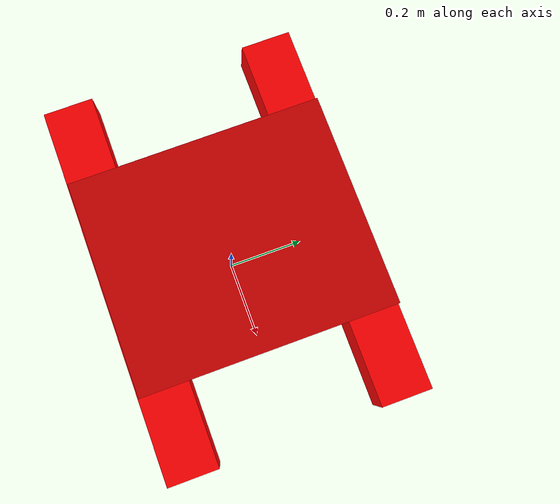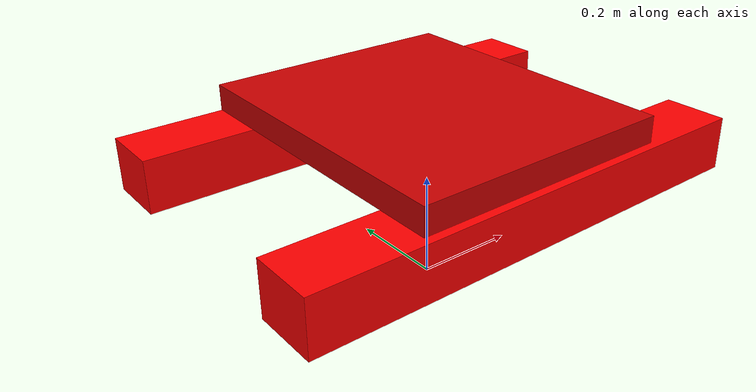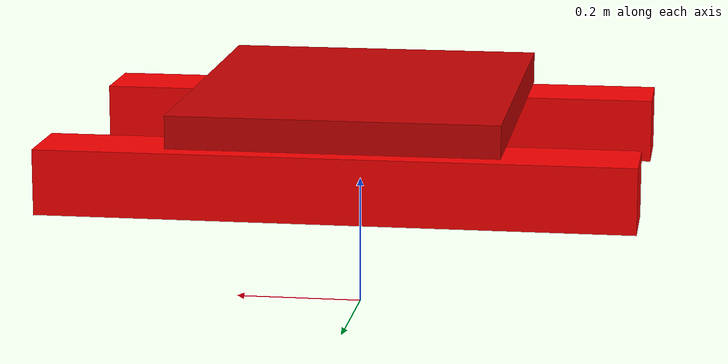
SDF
<sdf version="1.8">
  <model name="nd_boat">
    <pose>0 0 0.25 0 0 0</pose>
    <static>false</static>

    <!-- ===================== LEFT PONTOON ===================== -->
    <link name="pontoon_left">
      <pose>0 0.25 0 0 0 0</pose>
      <inertial>
        <mass>6.0</mass>
        <inertia>
          <ixx>0.15</ixx><iyy>0.50</iyy><izz>0.60</izz>
          <ixy>0</ixy><ixz>0</ixz><iyz>0</iyz>
        </inertia>
      </inertial>

      <collision name="col_left">
        <geometry><box><size>0.9 0.12 0.10</size></box></geometry>
      </collision>

      <visual name="vis_left">
        <geometry><box><size>0.9 0.12 0.10</size></box></geometry>
        <material>
          <ambient>0.40 0.00 0.00 1</ambient>
          <diffuse>1.00 0.00 0.00 1</diffuse>
          <specular>0.20 0.10 0.10 1</specular>
        </material>
      </visual>

      <!-- Buoyancy -->
      <plugin name="buoy_l" filename="libignition-gazebo6-buoyancy-system.so">
        <fluid_density>997.0</fluid_density>
      </plugin>

      <!-- Hydrodynamics -->
      <plugin name="hydro_l" filename="libignition-gazebo6-hydrodynamics-system.so">
        <linear_drag>2.0 8.0 30.0</linear_drag>
        <angular_drag>0.2 0.2 0.4</angular_drag>
      </plugin>
    </link>

    <!-- ===================== RIGHT PONTOON ===================== -->
    <link name="pontoon_right">
      <pose>0 -0.25 0 0 0 0</pose>
      <inertial>
        <mass>6.0</mass>
        <inertia>
          <ixx>0.15</ixx><iyy>0.50</iyy><izz>0.60</izz>
          <ixy>0</ixy><ixz>0</ixz><iyz>0</iyz>
        </inertia>
      </inertial>

      <collision name="col_right">
        <geometry><box><size>0.9 0.12 0.10</size></box></geometry>
      </collision>

      <visual name="vis_right">
        <geometry><box><size>0.9 0.12 0.10</size></box></geometry>
        <material>
          <ambient>0.40 0.00 0.00 1</ambient>
          <diffuse>1.00 0.00 0.00 1</diffuse>
          <specular>0.20 0.10 0.10 1</specular>
        </material>
      </visual>

      <!-- Buoyancy -->
      <plugin name="buoy_r" filename="libignition-gazebo6-buoyancy-system.so">
        <fluid_density>997.0</fluid_density>
      </plugin>

      <!-- Hydrodynamics -->
      <plugin name="hydro_r" filename="libignition-gazebo6-hydrodynamics-system.so">
        <linear_drag>2.0 8.0 30.0</linear_drag>
        <angular_drag>0.2 0.2 0.4</angular_drag>
      </plugin>
    </link>

    <!-- ===================== BRIDGE ===================== -->
    <link name="bridge">
      <pose>0 0 0.08 0 0 0</pose>
      <inertial>
        <mass>3.0</mass>
        <inertia>
          <ixx>0.05</ixx><iyy>0.20</iyy><izz>0.22</izz>
          <ixy>0</ixy><ixz>0</ixz><iyz>0</iyz>
        </inertia>
      </inertial>
      <collision name="col_bridge">
        <geometry><box><size>0.5 0.6 0.05</size></box></geometry>
      </collision>
      <visual name="vis_bridge">
        <geometry><box><size>0.5 0.6 0.05</size></box></geometry>
        <material>
          <ambient>0.20 0.00 0.00 1</ambient>
          <diffuse>0.80 0.00 0.00 1</diffuse>
          <specular>0.20 0.10 0.10 1</specular>
        </material>
      </visual>
    </link>

    <!-- ===================== PROP LINKS + JOINTS ===================== -->
    <!-- Left propeller (tiny) -->
    <link name="left_prop_link">
      <inertial>
        <mass>0.01</mass>
        <inertia>
          <ixx>1e-6</ixx><iyy>1e-6</iyy><izz>1e-6</izz>
          <ixy>0</ixy><ixz>0</ixz><iyz>0</iyz>
        </inertia>
      </inertial>
      <visual name="vis_left_prop">
        <geometry>
          <cylinder>
            <radius>0.015</radius>
            <length>0.01</length>
          </cylinder>
        </geometry>
        <material>
          <ambient>0.1 0.1 0.1 1</ambient>
          <diffuse>0.6 0.6 0.6 1</diffuse>
          <specular>0.2 0.2 0.2 1</specular>
        </material>
      </visual>
    </link>

    <joint name="left_prop_joint" type="revolute">
      <parent>pontoon_left</parent>
      <child>left_prop_link</child>
      <!-- place prop a bit aft of the pontoon -->
      <pose>-0.45 0 0 0 0 0</pose>
      <axis>
        <xyz>1 0 0</xyz>
        <limit><lower>-1e16</lower><upper>1e16</upper></limit>
        <dynamics><damping>0.0</damping><friction>0.0</friction></dynamics>
      </axis>
    </joint>

    <!-- Right propeller (tiny) -->
    <link name="right_prop_link">
      <inertial>
        <mass>0.01</mass>
        <inertia>
          <ixx>1e-6</ixx><iyy>1e-6</iyy><izz>1e-6</izz>
          <ixy>0</ixy><ixz>0</ixz><iyz>0</iyz>
        </inertia>
      </inertial>
      <visual name="vis_right_prop">
        <geometry>
          <cylinder>
            <radius>0.015</radius>
            <length>0.01</length>
          </cylinder>
        </geometry>
        <material>
          <ambient>0.1 0.1 0.1 1</ambient>
          <diffuse>0.6 0.6 0.6 1</diffuse>
          <specular>0.2 0.2 0.2 1</specular>
        </material>
      </visual>
    </link>

    <joint name="right_prop_joint" type="revolute">
      <parent>pontoon_right</parent>
      <child>right_prop_link</child>
      <pose>-0.45 0 0 0 0 0</pose>
      <axis>
        <xyz>1 0 0</xyz>
        <limit><lower>-1e16</lower><upper>1e16</upper></limit>
        <dynamics><damping>0.0</damping><friction>0.0</friction></dynamics>
      </axis>
    </joint>

    <!-- ===================== THRUSTERS (MODEL-LEVEL SYSTEMS) ===================== -->
    <plugin name="ignition::gazebo::systems::Thruster"
            filename="libignition-gazebo6-thruster-system.so">
      <joint_name>left_prop_joint</joint_name>
      <propeller_diameter>0.075</propeller_diameter>
      <fluid_density>1000</fluid_density>
      <max_thrust_cmd>500</max_thrust_cmd>
      <min_thrust_cmd>-500</min_thrust_cmd>
    </plugin>

    <plugin name="ignition::gazebo::systems::Thruster"
            filename="libignition-gazebo6-thruster-system.so">
      <joint_name>right_prop_joint</joint_name>
      <propeller_diameter>0.075</propeller_diameter>
      <fluid_density>1000</fluid_density>
      <max_thrust_cmd>500</max_thrust_cmd>
      <min_thrust_cmd>-500</min_thrust_cmd>
    </plugin>

    <!-- Welds -->
    <joint name="weld_l" type="fixed">
      <parent>bridge</parent>
      <child>pontoon_left</child>
    </joint>

    <joint name="weld_r" type="fixed">
      <parent>bridge</parent>
      <child>pontoon_right</child>
    </joint>
  </model>
</sdf>
